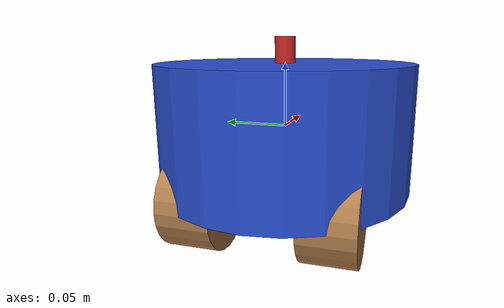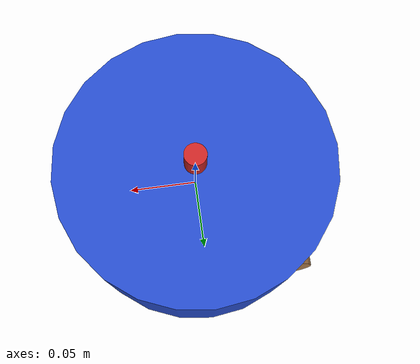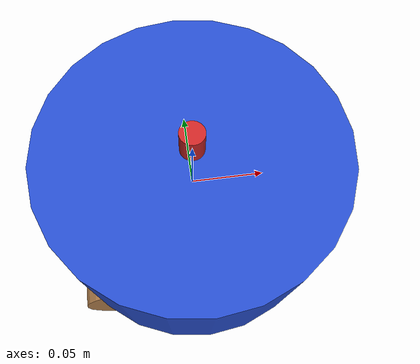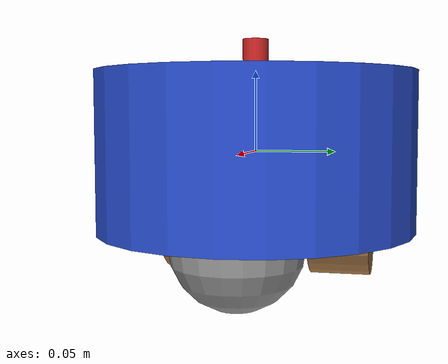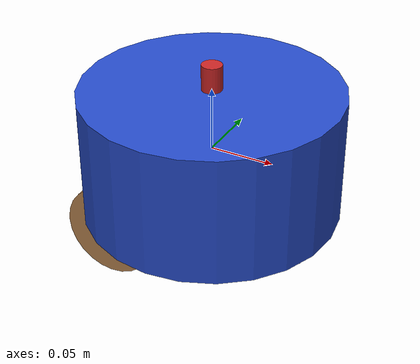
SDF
<?xml version='1.0'?>
<sdf version='1.6'>
  <model name='real_logger0'>
    <link name='logger-chassis'>
      <pose frame=''>0 0 0 0 -0 0</pose>
      <inertial>
        <pose frame=''>0.005952 0 -0.002381 0 -0 0</pose>
        <mass>2.1</mass>
        <inertia>
          <ixx>0.0332188</ixx>
          <ixy>0</ixy>
          <ixz>0.00059524</ixz>
          <iyy>0.0347069</iyy>
          <iyz>0</iyz>
          <izz>0.0640521</izz>
        </inertia>
      </inertial>
      <velocity_decay/>
      <gravity>1</gravity>
      <velocity_decay/>
      <self_collide>0</self_collide>
      <enable_wind>0</enable_wind>
      <kinematic>0</kinematic>
      <visual name='logger-chassis_fixed_joint_lump__logger-caster_visual_1'>
        <pose frame=''>0.05 0 -0.05 0 -0 0</pose>
        <geometry>
          <sphere>
            <radius>0.04</radius>
          </sphere>
        </geometry>
        <material>
          <script>
            <name>Gazebo/Grey</name>
            <uri>file://media/materials/scripts/gazebo.material</uri>
          </script>
          <shader type='pixel'>
            <normal_map>__default__</normal_map>
          </shader>
          <ambient>0.3 0.3 0.3 1</ambient>
          <diffuse>0.7 0.7 0.7 1</diffuse>
          <specular>0.01 0.01 0.01 1</specular>
          <emissive>0 0 0 1</emissive>
        </material>
        <transparency>0</transparency>
        <cast_shadows>1</cast_shadows>
      </visual>
      <visual name='logger-chassis_visual'>
        <pose frame=''>0 0 0 0 -0 0</pose>
        <geometry>
          <cylinder>
            <length>0.1</length>
            <radius>0.1</radius>
          </cylinder>
        </geometry>
        <material>
          <script>
            <name>Gazebo/Blue</name>
            <uri>file://media/materials/scripts/gazebo.material</uri>
          </script>
          <shader type='pixel'>
            <normal_map>__default__</normal_map>
          </shader>
          <ambient>0 0 1 1</ambient>
          <diffuse>0 0 1 1</diffuse>
          <specular>0.1 0.1 0.1 1</specular>
          <emissive>0 0 0 1</emissive>
        </material>
        <transparency>0</transparency>
        <cast_shadows>1</cast_shadows>
      </visual>
      <collision name='logger-chassis_fixed_joint_lump__logger-caster_collision_1'>
        <laser_retro>0</laser_retro>
        <max_contacts>10</max_contacts>
        <pose frame=''>0.05 0 -0.05 0 -0 0</pose>
        <geometry>
          <sphere>
            <radius>0.04</radius>
          </sphere>
        </geometry>
        <surface>
          <friction>
            <ode>
              <mu>0</mu>
              <mu2>0</mu2>
              <fdir1>0 0 0</fdir1>
              <slip1>0</slip1>
              <slip2>0</slip2>
            </ode>
            <torsional>
              <coefficient>1</coefficient>
              <patch_radius>0</patch_radius>
              <surface_radius>0</surface_radius>
              <use_patch_radius>1</use_patch_radius>
              <ode>
                <slip>0</slip>
              </ode>
            </torsional>
          </friction>
          <bounce>
            <restitution_coefficient>0</restitution_coefficient>
            <threshold>1e+06</threshold>
          </bounce>
          <contact>
            <collide_without_contact>0</collide_without_contact>
            <collide_without_contact_bitmask>1</collide_without_contact_bitmask>
            <collide_bitmask>1</collide_bitmask>
            <ode>
              <soft_cfm>0</soft_cfm>
              <soft_erp>0.2</soft_erp>
              <kp>1e+13</kp>
              <kd>1</kd>
              <max_vel>0.01</max_vel>
              <min_depth>0</min_depth>
            </ode>
            <bullet>
              <split_impulse>1</split_impulse>
              <split_impulse_penetration_threshold>-0.01</split_impulse_penetration_threshold>
              <soft_cfm>0</soft_cfm>
              <soft_erp>0.2</soft_erp>
              <kp>1e+13</kp>
              <kd>1</kd>
            </bullet>
          </contact>
        </surface>
      </collision>
      <collision name='logger-chassis_collision'>
        <laser_retro>0</laser_retro>
        <max_contacts>10</max_contacts>
        <pose frame=''>0 0 0 0 -0 0</pose>
        <geometry>
          <cylinder>
            <radius>0.1</radius>
            <length>0.1</length>
          </cylinder>
        </geometry>
        <surface>
          <friction>
            <ode>
              <mu>0.5</mu>
              <mu2>0.5</mu2>
              <fdir1>0 0 0</fdir1>
              <slip1>0</slip1>
              <slip2>0</slip2>
            </ode>
            <torsional>
              <coefficient>1</coefficient>
              <patch_radius>0</patch_radius>
              <surface_radius>0</surface_radius>
              <use_patch_radius>1</use_patch_radius>
              <ode>
                <slip>0</slip>
              </ode>
            </torsional>
          </friction>
          <bounce>
            <restitution_coefficient>0</restitution_coefficient>
            <threshold>1e+06</threshold>
          </bounce>
          <contact>
            <collide_without_contact>0</collide_without_contact>
            <collide_without_contact_bitmask>1</collide_without_contact_bitmask>
            <collide_bitmask>1</collide_bitmask>
            <ode>
              <soft_cfm>0</soft_cfm>
              <soft_erp>0.2</soft_erp>
              <kp>1e+13</kp>
              <kd>1</kd>
              <max_vel>0.01</max_vel>
              <min_depth>0</min_depth>
            </ode>
            <bullet>
              <split_impulse>1</split_impulse>
              <split_impulse_penetration_threshold>-0.01</split_impulse_penetration_threshold>
              <soft_cfm>0</soft_cfm>
              <soft_erp>0.2</soft_erp>
              <kp>1e+13</kp>
              <kd>1</kd>
            </bullet>
          </contact>
        </surface>
      </collision>
    </link>
    <link name='logger-hat'>
      <pose frame=''>0 0 0.1 0 -0 0</pose>
      <inertial>
        <pose frame=''>0 0 -0.05 0 -0 0</pose>
        <mass>0.5</mass>
        <inertia>
          <ixx>0.00046667</ixx>
          <ixy>0</ixy>
          <ixz>0</ixz>
          <iyy>0.00046667</iyy>
          <iyz>0</iyz>
          <izz>0.0001</izz>
        </inertia>
      </inertial>
      <gravity>1</gravity>
      <velocity_decay/>
      <self_collide>0</self_collide>
      <enable_wind>0</enable_wind>
      <kinematic>0</kinematic>
      <visual name='logger-hat_visual'>
        <pose frame=''>0 0 -0.05 0 -0 0</pose>
        <geometry>
          <cylinder>
            <length>0.04</length>
            <radius>0.008</radius>
          </cylinder>
        </geometry>
        <material>
          <script>
            <name>Gazebo/Red</name>
            <uri>file://media/materials/scripts/gazebo.material</uri>
          </script>
          <shader type='pixel'>
            <normal_map>__default__</normal_map>
          </shader>
          <ambient>1 0 0 1</ambient>
          <diffuse>1 0 0 1</diffuse>
          <specular>0.1 0.1 0.1 1</specular>
          <emissive>0 0 0 1</emissive>
        </material>
        <transparency>0</transparency>
        <cast_shadows>1</cast_shadows>
      </visual>
      <collision name='logger-hat_collision'>
        <laser_retro>0</laser_retro>
        <max_contacts>10</max_contacts>
        <pose frame=''>0 0 -0.05 0 -0 0</pose>
        <geometry>
          <cylinder>
            <radius>0.008</radius>
            <length>0.04</length>
          </cylinder>
        </geometry>
        <surface>
          <friction>
            <ode>
              <mu>0</mu>
              <mu2>0</mu2>
              <fdir1>0 0 0</fdir1>
              <slip1>0</slip1>
              <slip2>0</slip2>
            </ode>
            <torsional>
              <coefficient>1</coefficient>
              <patch_radius>0</patch_radius>
              <surface_radius>0</surface_radius>
              <use_patch_radius>1</use_patch_radius>
              <ode>
                <slip>0</slip>
              </ode>
            </torsional>
          </friction>
          <bounce>
            <restitution_coefficient>0</restitution_coefficient>
            <threshold>1e+06</threshold>
          </bounce>
          <contact>
            <collide_without_contact>0</collide_without_contact>
            <collide_without_contact_bitmask>1</collide_without_contact_bitmask>
            <collide_bitmask>1</collide_bitmask>
            <ode>
              <soft_cfm>0</soft_cfm>
              <soft_erp>0.2</soft_erp>
              <kp>1e+13</kp>
              <kd>1</kd>
              <max_vel>0.01</max_vel>
              <min_depth>0</min_depth>
            </ode>
            <bullet>
              <split_impulse>1</split_impulse>
              <split_impulse_penetration_threshold>-0.01</split_impulse_penetration_threshold>
              <soft_cfm>0</soft_cfm>
              <soft_erp>0.2</soft_erp>
              <kp>1e+13</kp>
              <kd>1</kd>
            </bullet>
          </contact>
        </surface>
      </collision>
    </link>
    <link name='logger-left_wheel'>
      <pose frame=''>-0.05 -0.05 -0.05 0 -0 0</pose>
      <inertial>
        <pose frame=''>0 0 0 1.5708 -0 0</pose>
        <mass>0.5</mass>
        <inertia>
          <ixx>0.00107917</ixx>
          <ixy>0</ixy>
          <ixz>0</ixz>
          <iyy>0.00107917</iyy>
          <iyz>0</iyz>
          <izz>0.002025</izz>
        </inertia>
      </inertial>
      <gravity>1</gravity>
      <velocity_decay/>
      <self_collide>0</self_collide>
      <enable_wind>0</enable_wind>
      <kinematic>0</kinematic>
      <visual name='logger-left_wheel_visual'>
        <pose frame=''>0 0 0 1.5708 -0 0</pose>
        <geometry>
          <cylinder>
            <length>0.04</length>
            <radius>0.036</radius>
          </cylinder>
        </geometry>
        <material>
          <script>
            <name>Gazebo/Wood</name>
            <uri>file://media/materials/scripts/gazebo.material</uri>
          </script>
          <shader type='pixel'>
            <normal_map>__default__</normal_map>
          </shader>
          <ambient>1 1 1 1</ambient>
          <diffuse>1 1 1 1</diffuse>
          <specular>0.2 0.2 0.2 1</specular>
          <emissive>0 0 0 1</emissive>
        </material>
        <transparency>0</transparency>
        <cast_shadows>1</cast_shadows>
      </visual>
      <collision name='logger-left_wheel_collision'>
        <laser_retro>0</laser_retro>
        <max_contacts>10</max_contacts>
        <pose frame=''>0 0 0 1.5708 -0 0</pose>
        <geometry>
          <cylinder>
            <radius>0.036</radius>
            <length>0.04</length>
          </cylinder>
        </geometry>
        <surface>
          <friction>
            <ode>
              <mu>0.99</mu>
              <mu2>0.99</mu2>
              <fdir1>0 0 0</fdir1>
              <slip1>0</slip1>
              <slip2>0</slip2>
            </ode>
            <torsional>
              <coefficient>1</coefficient>
              <patch_radius>0</patch_radius>
              <surface_radius>0</surface_radius>
              <use_patch_radius>1</use_patch_radius>
              <ode>
                <slip>0</slip>
              </ode>
            </torsional>
          </friction>
          <bounce>
            <restitution_coefficient>0</restitution_coefficient>
            <threshold>1e+06</threshold>
          </bounce>
          <contact>
            <collide_without_contact>0</collide_without_contact>
            <collide_without_contact_bitmask>1</collide_without_contact_bitmask>
            <collide_bitmask>1</collide_bitmask>
            <ode>
              <soft_cfm>0</soft_cfm>
              <soft_erp>0.2</soft_erp>
              <kp>1e+13</kp>
              <kd>1</kd>
              <max_vel>0.01</max_vel>
              <min_depth>0</min_depth>
            </ode>
            <bullet>
              <split_impulse>1</split_impulse>
              <split_impulse_penetration_threshold>-0.01</split_impulse_penetration_threshold>
              <soft_cfm>0</soft_cfm>
              <soft_erp>0.2</soft_erp>
              <kp>1e+13</kp>
              <kd>1</kd>
            </bullet>
          </contact>
        </surface>
      </collision>
    </link>
    <link name='logger-right_wheel'>
      <pose frame=''>-0.05 0.05 -0.05 0 -0 0</pose>
      <inertial>
        <pose frame=''>0 0 0 1.5708 -0 0</pose>
        <mass>0.5</mass>
        <inertia>
          <ixx>0.00107917</ixx>
          <ixy>0</ixy>
          <ixz>0</ixz>
          <iyy>0.00107917</iyy>
          <iyz>0</iyz>
          <izz>0.002025</izz>
        </inertia>
      </inertial>
      <gravity>1</gravity>
      <velocity_decay/>
      <self_collide>0</self_collide>
      <enable_wind>0</enable_wind>
      <kinematic>0</kinematic>
      <visual name='logger-right_wheel_visual'>
        <pose frame=''>0 0 0 1.5708 -0 0</pose>
        <geometry>
          <cylinder>
            <length>0.04</length>
            <radius>0.036</radius>
          </cylinder>
        </geometry>
        <material>
          <script>
            <name>Gazebo/Wood</name>
            <uri>file://media/materials/scripts/gazebo.material</uri>
          </script>
          <shader type='pixel'>
            <normal_map>__default__</normal_map>
          </shader>
          <ambient>1 1 1 1</ambient>
          <diffuse>1 1 1 1</diffuse>
          <specular>0.2 0.2 0.2 1</specular>
          <emissive>0 0 0 1</emissive>
        </material>
        <transparency>0</transparency>
        <cast_shadows>1</cast_shadows>
      </visual>
      <collision name='logger-right_wheel_collision'>
        <laser_retro>0</laser_retro>
        <max_contacts>10</max_contacts>
        <pose frame=''>0 0 0 1.5708 -0 0</pose>
        <geometry>
          <cylinder>
            <radius>0.036</radius>
            <length>0.04</length>
          </cylinder>
        </geometry>
        <surface>
          <friction>
            <ode>
              <mu>0.99</mu>
              <mu2>0.99</mu2>
              <fdir1>0 0 0</fdir1>
              <slip1>0</slip1>
              <slip2>0</slip2>
            </ode>
            <torsional>
              <coefficient>1</coefficient>
              <patch_radius>0</patch_radius>
              <surface_radius>0</surface_radius>
              <use_patch_radius>1</use_patch_radius>
              <ode>
                <slip>0</slip>
              </ode>
            </torsional>
          </friction>
          <bounce>
            <restitution_coefficient>0</restitution_coefficient>
            <threshold>1e+06</threshold>
          </bounce>
          <contact>
            <collide_without_contact>0</collide_without_contact>
            <collide_without_contact_bitmask>1</collide_without_contact_bitmask>
            <collide_bitmask>1</collide_bitmask>
            <ode>
              <soft_cfm>0</soft_cfm>
              <soft_erp>0.2</soft_erp>
              <kp>1e+13</kp>
              <kd>1</kd>
              <max_vel>0.01</max_vel>
              <min_depth>0</min_depth>
            </ode>
            <bullet>
              <split_impulse>1</split_impulse>
              <split_impulse_penetration_threshold>-0.01</split_impulse_penetration_threshold>
              <soft_cfm>0</soft_cfm>
              <soft_erp>0.2</soft_erp>
              <kp>1e+13</kp>
              <kd>1</kd>
            </bullet>
          </contact>
        </surface>
      </collision>
    </link>
    <joint name='logger-chassis2hat' type='revolute'>
      <parent>logger-chassis</parent>
      <child>logger-hat</child>
      <pose frame=''>0 0 0 0 -0 0</pose>
      <axis>
        <xyz>0 0 1</xyz>
        <use_parent_model_frame>0</use_parent_model_frame>
        <limit>
          <lower>-1e+16</lower>
          <upper>1e+16</upper>
          <effort>-1</effort>
          <velocity>-1</velocity>
        </limit>
        <dynamics>
          <spring_reference>0</spring_reference>
          <spring_stiffness>0</spring_stiffness>
          <damping>0</damping>
          <friction>0</friction>
        </dynamics>
      </axis>
      <physics>
        <ode>
          <limit>
            <cfm>0</cfm>
            <erp>0.2</erp>
          </limit>
          <suspension>
            <cfm>0</cfm>
            <erp>0.2</erp>
          </suspension>
        </ode>
      </physics>
    </joint>
    <joint name='logger-chassis2left_wheel' type='revolute'>
      <parent>logger-chassis</parent>
      <child>logger-left_wheel</child>
      <pose frame=''>0 0 0 0 -0 0</pose>
      <axis>
        <xyz>0 1 0</xyz>
        <use_parent_model_frame>0</use_parent_model_frame>
        <limit>
          <lower>-1e+16</lower>
          <upper>1e+16</upper>
          <effort>-1</effort>
          <velocity>-1</velocity>
        </limit>
        <dynamics>
          <spring_reference>0</spring_reference>
          <spring_stiffness>0</spring_stiffness>
          <damping>0</damping>
          <friction>0</friction>
        </dynamics>
      </axis>
      <physics>
        <ode>
          <limit>
            <cfm>0</cfm>
            <erp>0.2</erp>
          </limit>
          <suspension>
            <cfm>0</cfm>
            <erp>0.2</erp>
          </suspension>
        </ode>
      </physics>
    </joint>
    <joint name='logger-chassis2right_wheel' type='revolute'>
      <parent>logger-chassis</parent>
      <child>logger-right_wheel</child>
      <pose frame=''>0 0 0 0 -0 0</pose>
      <axis>
        <xyz>0 1 0</xyz>
        <use_parent_model_frame>0</use_parent_model_frame>
        <limit>
          <lower>-1e+16</lower>
          <upper>1e+16</upper>
          <effort>-1</effort>
          <velocity>-1</velocity>
        </limit>
        <dynamics>
          <spring_reference>0</spring_reference>
          <spring_stiffness>0</spring_stiffness>
          <damping>0</damping>
          <friction>0</friction>
        </dynamics>
      </axis>
      <physics>
        <ode>
          <limit>
            <cfm>0</cfm>
            <erp>0.2</erp>
          </limit>
          <suspension>
            <cfm>0</cfm>
            <erp>0.2</erp>
          </suspension>
        </ode>
      </physics>
    </joint>
    <static>0</static>
    <allow_auto_disable>1</allow_auto_disable>
    <plugin name='differential_drive_controller' filename='libgazebo_ros_diff_drive.so'>
      <legacyMode>0</legacyMode>
      <alwaysOn>1</alwaysOn>
      <updateRate>100</updateRate>
      <leftJoint>logger-chassis2left_wheel</leftJoint>
      <rightJoint>logger-chassis2right_wheel</rightJoint>
      <wheelSeparation>0.25</wheelSeparation>
      <wheelDiameter>0.18</wheelDiameter>
      <wheelTorque>1</wheelTorque>
      <commandTopic>logger0/cmd_vel</commandTopic>
      <odometryTopic>odom</odometryTopic>
      <odometryFrame>odom</odometryFrame>
      <robotBaseFrame>logger-chassis</robotBaseFrame>
      <robotNamespace>/</robotNamespace>
    </plugin>
  </model>
</sdf>
